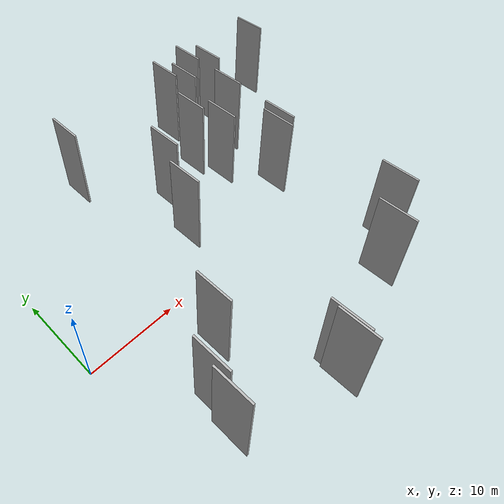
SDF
<sdf version="1.6">
 <world name="default">
  <scene>
   <sky><clouds><speed>12</speed></clouds></sky>
   <ambient>0.4 0.4 0.4 1</ambient>
   <background>0.7 0.7 0.7 1</background>
   <shadows>1</shadows>
  </scene>
  <gravity>0 0 -9.8066</gravity>
  <magnetic_field>6e-06 2.3e-05 -4.2e-05</magnetic_field>
  <physics default="0" name="default_physics" type="ode">
   <ode>
    <solver>
     <type>quick</type>
     <iters>10</iters>
     <sor>1.0</sor>
     <use_dynamic_moi_rescaling>0</use_dynamic_moi_rescaling>
    </solver>
    <constraints>
     <cfm>0</cfm>
     <erp>0.2</erp>
     <contact_max_correcting_vel>100</contact_max_correcting_vel>
     <contact_surface_layer>0.001</contact_surface_layer>
    </constraints>
   </ode>
   <max_step_size>0.004</max_step_size>
   <real_time_factor>1</real_time_factor>
   <real_time_update_rate>250</real_time_update_rate>
  </physics>
  <light name="sun" type="directional">
   <pose>0 0 10 0 0 0</pose>
   <diffuse>0.8 0.8 0.8 1</diffuse>
   <specular>0.2 0.2 0.2 1</specular>
   <attenuation>
    <range>1000</range>
    <constant>0.9</constant>
    <linear>0.01</linear>
    <quadratic>0.001</quadratic>
   </attenuation>
   <direction>-0.5 0.1 -0.9</direction>
  </light>
  <model name="grey_wall_1">
   <static>1</static>
   <pose>4.4582 -13.6974 2.5 0.000000 0.000000 1.570796</pose>
   <link name="link">
    <pose>0 0 5.00 0 0 0</pose>
    <collision name="collision"><geometry><box><size>4.00 0.2 10.00</size></box></geometry></collision>
    <visual name="visual">
     <cast_shadows>0</cast_shadows>
     <geometry><box><size>4.00 0.2 10.00</size></box></geometry>
     <material>
      <script>
       <uri>model://HANNAS_wall/materials/scripts</uri>
       <uri>model://HANNAS_wall/materials/textures</uri>
       <name>vrc/HANNAS_wall</name>
      </script>
     </material>
    </visual>
   </link>
  </model>
  <model name="grey_wall_2">
   <static>1</static>
   <pose>28.9669 3.1683 2.5 0.000000 0.000000 1.570796</pose>
   <link name="link">
    <pose>0 0 5.00 0 0 0</pose>
    <collision name="collision"><geometry><box><size>4.00 0.2 10.00</size></box></geometry></collision>
    <visual name="visual">
     <cast_shadows>0</cast_shadows>
     <geometry><box><size>4.00 0.2 10.00</size></box></geometry>
     <material>
      <script>
       <uri>model://HANNAS_wall/materials/scripts</uri>
       <uri>model://HANNAS_wall/materials/textures</uri>
       <name>vrc/HANNAS_wall</name>
      </script>
     </material>
    </visual>
   </link>
  </model>
  <model name="grey_wall_3">
   <static>1</static>
   <pose>26.2351 18.2482 2.5 0.000000 0.000000 1.570796</pose>
   <link name="link">
    <pose>0 0 5.00 0 0 0</pose>
    <collision name="collision"><geometry><box><size>4.00 0.2 10.00</size></box></geometry></collision>
    <visual name="visual">
     <cast_shadows>0</cast_shadows>
     <geometry><box><size>4.00 0.2 10.00</size></box></geometry>
     <material>
      <script>
       <uri>model://HANNAS_wall/materials/scripts</uri>
       <uri>model://HANNAS_wall/materials/textures</uri>
       <name>vrc/HANNAS_wall</name>
      </script>
     </material>
    </visual>
   </link>
  </model>
  <model name="grey_wall_4">
   <static>1</static>
   <pose>30.1284 4.0043 2.5 0.000000 0.000000 1.570796</pose>
   <link name="link">
    <pose>0 0 5.00 0 0 0</pose>
    <collision name="collision"><geometry><box><size>4.00 0.2 10.00</size></box></geometry></collision>
    <visual name="visual">
     <cast_shadows>0</cast_shadows>
     <geometry><box><size>4.00 0.2 10.00</size></box></geometry>
     <material>
      <script>
       <uri>model://HANNAS_wall/materials/scripts</uri>
       <uri>model://HANNAS_wall/materials/textures</uri>
       <name>vrc/HANNAS_wall</name>
      </script>
     </material>
    </visual>
   </link>
  </model>
  <model name="grey_wall_5">
   <static>1</static>
   <pose>5.0619 -10.9735 2.5 0.000000 0.000000 1.570796</pose>
   <link name="link">
    <pose>0 0 5.00 0 0 0</pose>
    <collision name="collision"><geometry><box><size>4.00 0.2 10.00</size></box></geometry></collision>
    <visual name="visual">
     <cast_shadows>0</cast_shadows>
     <geometry><box><size>4.00 0.2 10.00</size></box></geometry>
     <material>
      <script>
       <uri>model://HANNAS_wall/materials/scripts</uri>
       <uri>model://HANNAS_wall/materials/textures</uri>
       <name>vrc/HANNAS_wall</name>
      </script>
     </material>
    </visual>
   </link>
  </model>
  <model name="grey_wall_6">
   <static>1</static>
   <pose>18.4053 9.4377 2.5 0.000000 0.000000 1.570796</pose>
   <link name="link">
    <pose>0 0 5.00 0 0 0</pose>
    <collision name="collision"><geometry><box><size>4.00 0.2 10.00</size></box></geometry></collision>
    <visual name="visual">
     <cast_shadows>0</cast_shadows>
     <geometry><box><size>4.00 0.2 10.00</size></box></geometry>
     <material>
      <script>
       <uri>model://HANNAS_wall/materials/scripts</uri>
       <uri>model://HANNAS_wall/materials/textures</uri>
       <name>vrc/HANNAS_wall</name>
      </script>
     </material>
    </visual>
   </link>
  </model>
  <model name="grey_wall_7">
   <static>1</static>
   <pose>25.7033 8.3853 2.5 0.000000 0.000000 1.570796</pose>
   <link name="link">
    <pose>0 0 5.00 0 0 0</pose>
    <collision name="collision"><geometry><box><size>4.00 0.2 10.00</size></box></geometry></collision>
    <visual name="visual">
     <cast_shadows>0</cast_shadows>
     <geometry><box><size>4.00 0.2 10.00</size></box></geometry>
     <material>
      <script>
       <uri>model://HANNAS_wall/materials/scripts</uri>
       <uri>model://HANNAS_wall/materials/textures</uri>
       <name>vrc/HANNAS_wall</name>
      </script>
     </material>
    </visual>
   </link>
  </model>
  <model name="grey_wall_8">
   <static>1</static>
   <pose>24.3124 11.7627 2.5 0.000000 0.000000 1.570796</pose>
   <link name="link">
    <pose>0 0 5.00 0 0 0</pose>
    <collision name="collision"><geometry><box><size>4.00 0.2 10.00</size></box></geometry></collision>
    <visual name="visual">
     <cast_shadows>0</cast_shadows>
     <geometry><box><size>4.00 0.2 10.00</size></box></geometry>
     <material>
      <script>
       <uri>model://HANNAS_wall/materials/scripts</uri>
       <uri>model://HANNAS_wall/materials/textures</uri>
       <name>vrc/HANNAS_wall</name>
      </script>
     </material>
    </visual>
   </link>
  </model>
  <model name="grey_wall_9">
   <static>1</static>
   <pose>11.8897 17.6740 2.5 0.000000 0.000000 1.570796</pose>
   <link name="link">
    <pose>0 0 5.00 0 0 0</pose>
    <collision name="collision"><geometry><box><size>4.00 0.2 10.00</size></box></geometry></collision>
    <visual name="visual">
     <cast_shadows>0</cast_shadows>
     <geometry><box><size>4.00 0.2 10.00</size></box></geometry>
     <material>
      <script>
       <uri>model://HANNAS_wall/materials/scripts</uri>
       <uri>model://HANNAS_wall/materials/textures</uri>
       <name>vrc/HANNAS_wall</name>
      </script>
     </material>
    </visual>
   </link>
  </model>
  <model name="grey_wall_10">
   <static>1</static>
   <pose>31.2248 -10.2661 2.5 0.000000 0.000000 1.570796</pose>
   <link name="link">
    <pose>0 0 5.00 0 0 0</pose>
    <collision name="collision"><geometry><box><size>4.00 0.2 10.00</size></box></geometry></collision>
    <visual name="visual">
     <cast_shadows>0</cast_shadows>
     <geometry><box><size>4.00 0.2 10.00</size></box></geometry>
     <material>
      <script>
       <uri>model://HANNAS_wall/materials/scripts</uri>
       <uri>model://HANNAS_wall/materials/textures</uri>
       <name>vrc/HANNAS_wall</name>
      </script>
     </material>
    </visual>
   </link>
  </model>
  <model name="grey_wall_11">
   <static>1</static>
   <pose>15.0175 -16.2208 2.5 0.000000 0.000000 1.570796</pose>
   <link name="link">
    <pose>0 0 5.00 0 0 0</pose>
    <collision name="collision"><geometry><box><size>4.00 0.2 10.00</size></box></geometry></collision>
    <visual name="visual">
     <cast_shadows>0</cast_shadows>
     <geometry><box><size>4.00 0.2 10.00</size></box></geometry>
     <material>
      <script>
       <uri>model://HANNAS_wall/materials/scripts</uri>
       <uri>model://HANNAS_wall/materials/textures</uri>
       <name>vrc/HANNAS_wall</name>
      </script>
     </material>
    </visual>
   </link>
  </model>
  <model name="grey_wall_12">
   <static>1</static>
   <pose>32.2550 17.2422 2.5 0.000000 0.000000 1.570796</pose>
   <link name="link">
    <pose>0 0 5.00 0 0 0</pose>
    <collision name="collision"><geometry><box><size>4.00 0.2 10.00</size></box></geometry></collision>
    <visual name="visual">
     <cast_shadows>0</cast_shadows>
     <geometry><box><size>4.00 0.2 10.00</size></box></geometry>
     <material>
      <script>
       <uri>model://HANNAS_wall/materials/scripts</uri>
       <uri>model://HANNAS_wall/materials/textures</uri>
       <name>vrc/HANNAS_wall</name>
      </script>
     </material>
    </visual>
   </link>
  </model>
  <model name="grey_wall_13">
   <static>1</static>
   <pose>27.6321 16.4294 2.5 0.000000 0.000000 1.570796</pose>
   <link name="link">
    <pose>0 0 5.00 0 0 0</pose>
    <collision name="collision"><geometry><box><size>4.00 0.2 10.00</size></box></geometry></collision>
    <visual name="visual">
     <cast_shadows>0</cast_shadows>
     <geometry><box><size>4.00 0.2 10.00</size></box></geometry>
     <material>
      <script>
       <uri>model://HANNAS_wall/materials/scripts</uri>
       <uri>model://HANNAS_wall/materials/textures</uri>
       <name>vrc/HANNAS_wall</name>
      </script>
     </material>
    </visual>
   </link>
  </model>
  <model name="grey_wall_14">
   <static>1</static>
   <pose>30.4307 18.8848 2.5 0.000000 0.000000 1.570796</pose>
   <link name="link">
    <pose>0 0 5.00 0 0 0</pose>
    <collision name="collision"><geometry><box><size>4.00 0.2 10.00</size></box></geometry></collision>
    <visual name="visual">
     <cast_shadows>0</cast_shadows>
     <geometry><box><size>4.00 0.2 10.00</size></box></geometry>
     <material>
      <script>
       <uri>model://HANNAS_wall/materials/scripts</uri>
       <uri>model://HANNAS_wall/materials/textures</uri>
       <name>vrc/HANNAS_wall</name>
      </script>
     </material>
    </visual>
   </link>
  </model>
  <model name="grey_wall_15">
   <static>1</static>
   <pose>30.4062 12.0328 2.5 0.000000 0.000000 1.570796</pose>
   <link name="link">
    <pose>0 0 5.00 0 0 0</pose>
    <collision name="collision"><geometry><box><size>4.00 0.2 10.00</size></box></geometry></collision>
    <visual name="visual">
     <cast_shadows>0</cast_shadows>
     <geometry><box><size>4.00 0.2 10.00</size></box></geometry>
     <material>
      <script>
       <uri>model://HANNAS_wall/materials/scripts</uri>
       <uri>model://HANNAS_wall/materials/textures</uri>
       <name>vrc/HANNAS_wall</name>
      </script>
     </material>
    </visual>
   </link>
  </model>
  <model name="grey_wall_16">
   <static>1</static>
   <pose>40.8125 18.2715 2.5 0.000000 0.000000 1.570796</pose>
   <link name="link">
    <pose>0 0 5.00 0 0 0</pose>
    <collision name="collision"><geometry><box><size>4.00 0.2 10.00</size></box></geometry></collision>
    <visual name="visual">
     <cast_shadows>0</cast_shadows>
     <geometry><box><size>4.00 0.2 10.00</size></box></geometry>
     <material>
      <script>
       <uri>model://HANNAS_wall/materials/scripts</uri>
       <uri>model://HANNAS_wall/materials/textures</uri>
       <name>vrc/HANNAS_wall</name>
      </script>
     </material>
    </visual>
   </link>
  </model>
  <model name="grey_wall_17">
   <static>1</static>
   <pose>16.3551 4.1770 2.5 0.000000 0.000000 1.570796</pose>
   <link name="link">
    <pose>0 0 5.00 0 0 0</pose>
    <collision name="collision"><geometry><box><size>4.00 0.2 10.00</size></box></geometry></collision>
    <visual name="visual">
     <cast_shadows>0</cast_shadows>
     <geometry><box><size>4.00 0.2 10.00</size></box></geometry>
     <material>
      <script>
       <uri>model://HANNAS_wall/materials/scripts</uri>
       <uri>model://HANNAS_wall/materials/textures</uri>
       <name>vrc/HANNAS_wall</name>
      </script>
     </material>
    </visual>
   </link>
  </model>
  <model name="grey_wall_18">
   <static>1</static>
   <pose>14.7921 -17.0783 2.5 0.000000 0.000000 1.570796</pose>
   <link name="link">
    <pose>0 0 5.00 0 0 0</pose>
    <collision name="collision"><geometry><box><size>4.00 0.2 10.00</size></box></geometry></collision>
    <visual name="visual">
     <cast_shadows>0</cast_shadows>
     <geometry><box><size>4.00 0.2 10.00</size></box></geometry>
     <material>
      <script>
       <uri>model://HANNAS_wall/materials/scripts</uri>
       <uri>model://HANNAS_wall/materials/textures</uri>
       <name>vrc/HANNAS_wall</name>
      </script>
     </material>
    </visual>
   </link>
  </model>
  <model name="grey_wall_19">
   <static>1</static>
   <pose>9.2452 -6.9794 2.5 0.000000 0.000000 1.570796</pose>
   <link name="link">
    <pose>0 0 5.00 0 0 0</pose>
    <collision name="collision"><geometry><box><size>4.00 0.2 10.00</size></box></geometry></collision>
    <visual name="visual">
     <cast_shadows>0</cast_shadows>
     <geometry><box><size>4.00 0.2 10.00</size></box></geometry>
     <material>
      <script>
       <uri>model://HANNAS_wall/materials/scripts</uri>
       <uri>model://HANNAS_wall/materials/textures</uri>
       <name>vrc/HANNAS_wall</name>
      </script>
     </material>
    </visual>
   </link>
  </model>
  <model name="grey_wall_20">
   <static>1</static>
   <pose>26.7414 -12.8938 2.5 0.000000 0.000000 1.570796</pose>
   <link name="link">
    <pose>0 0 5.00 0 0 0</pose>
    <collision name="collision"><geometry><box><size>4.00 0.2 10.00</size></box></geometry></collision>
    <visual name="visual">
     <cast_shadows>0</cast_shadows>
     <geometry><box><size>4.00 0.2 10.00</size></box></geometry>
     <material>
      <script>
       <uri>model://HANNAS_wall/materials/scripts</uri>
       <uri>model://HANNAS_wall/materials/textures</uri>
       <name>vrc/HANNAS_wall</name>
      </script>
     </material>
    </visual>
   </link>
  </model>
 </world>
</sdf>
